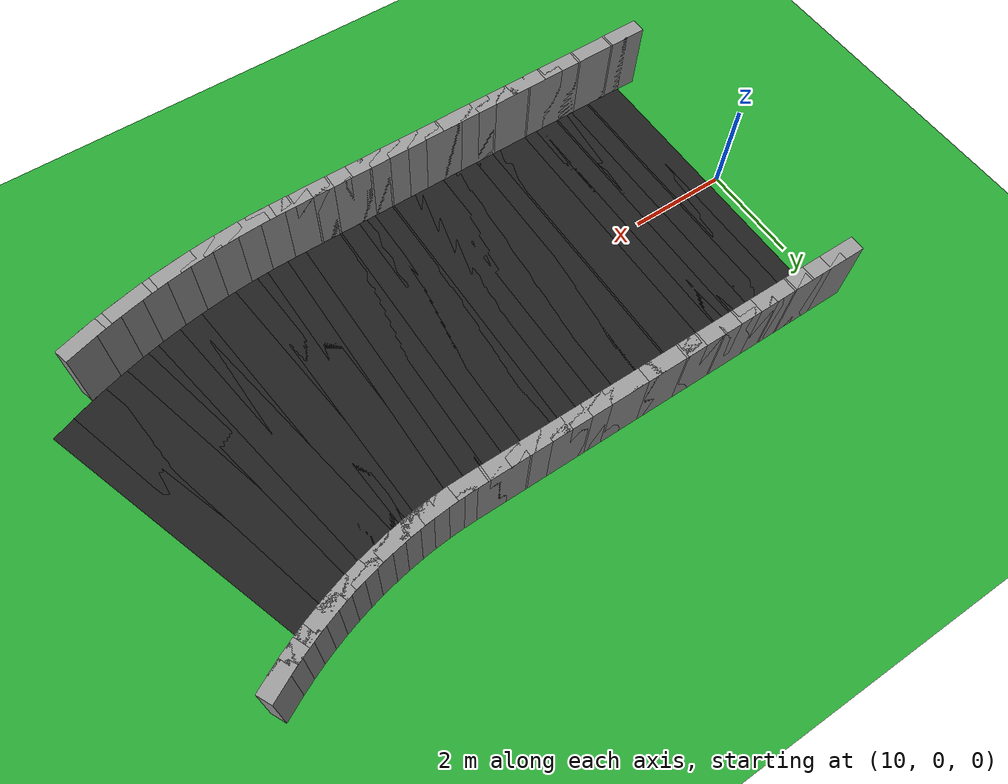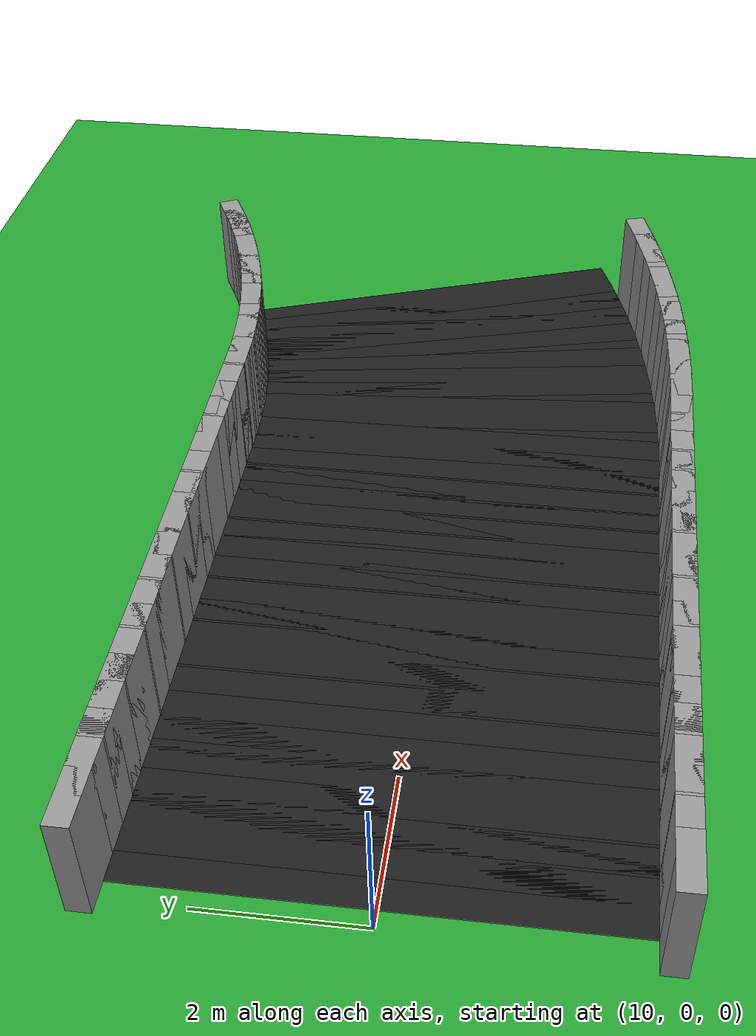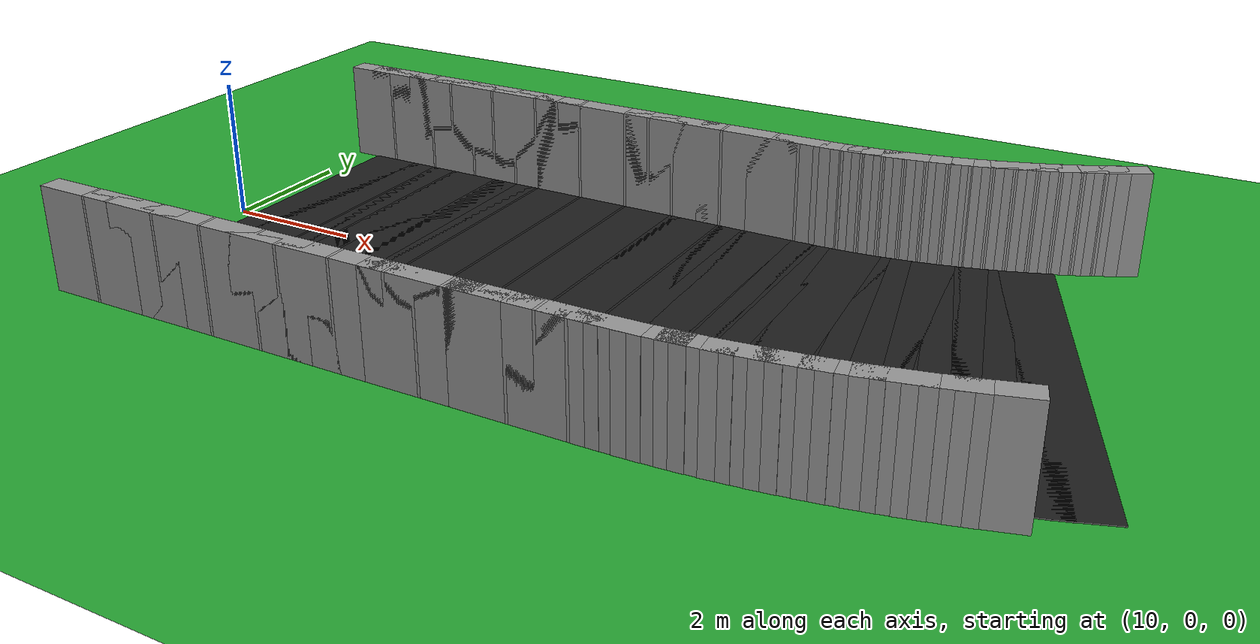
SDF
<sdf version="1.6">
 <world name="loop_road">
  <include><uri>model://sun</uri></include>
  <model name="ground_plane">
   <static>true</static>
   <link name="link">
    <collision name="collision">
     <surface><friction><ode><mu>100</mu><mu2>50</mu2></ode></friction></surface>
     <geometry><plane><normal>0 0 1</normal><size>120 120</size></plane></geometry>
    </collision>
    <visual name="visual">
     <geometry><plane><normal>0 0 1</normal><size>120 120</size></plane></geometry>
     <material>
      <script><uri>file://media/materials/scripts/gazebo.material</uri><name>Gazebo/Green</name></script>
     </material>
    </visual>
   </link>
  </model>
  <model name="curbL_25">
   <static>true</static>
   <pose>10.200 3.150 0.750 0 0 0.00000</pose>
   <link name="link">
    <collision name="collision"><geometry><box><size>0.760 0.300 1.500</size></box></geometry></collision>
    <visual name="visual">
     <geometry><box><size>0.760 0.300 1.500</size></box></geometry>
     <material>
      <script><uri>file://media/materials/scripts/gazebo.material</uri><name>Gazebo/Grey</name></script>
     </material>
    </visual>
   </link>
  </model>
  <model name="curbR_25">
   <static>true</static>
   <pose>10.200 -3.150 0.750 0 0 0.00000</pose>
   <link name="link">
    <collision name="collision"><geometry><box><size>0.760 0.300 1.500</size></box></geometry></collision>
    <visual name="visual">
     <geometry><box><size>0.760 0.300 1.500</size></box></geometry>
     <material>
      <script><uri>file://media/materials/scripts/gazebo.material</uri><name>Gazebo/Grey</name></script>
     </material>
    </visual>
   </link>
  </model>
  <model name="asphalt_26">
   <static>true</static>
   <pose>10.600 0.000 0.005 0 0 0.00000</pose>
   <link name="link">
    <visual name="visual">
     <geometry><box><size>0.760 6.000 0.010</size></box></geometry>
     <material>
      <script><uri>file://media/materials/scripts/gazebo.material</uri><name>Gazebo/Black</name></script>
     </material>
    </visual>
   </link>
  </model>
  <model name="curbL_26">
   <static>true</static>
   <pose>10.600 3.150 0.750 0 0 0.00000</pose>
   <link name="link">
    <collision name="collision"><geometry><box><size>0.760 0.300 1.500</size></box></geometry></collision>
    <visual name="visual">
     <geometry><box><size>0.760 0.300 1.500</size></box></geometry>
     <material>
      <script><uri>file://media/materials/scripts/gazebo.material</uri><name>Gazebo/Grey</name></script>
     </material>
    </visual>
   </link>
  </model>
  <model name="curbR_26">
   <static>true</static>
   <pose>10.600 -3.150 0.750 0 0 0.00000</pose>
   <link name="link">
    <collision name="collision"><geometry><box><size>0.760 0.300 1.500</size></box></geometry></collision>
    <visual name="visual">
     <geometry><box><size>0.760 0.300 1.500</size></box></geometry>
     <material>
      <script><uri>file://media/materials/scripts/gazebo.material</uri><name>Gazebo/Grey</name></script>
     </material>
    </visual>
   </link>
  </model>
  <model name="asphalt_27">
   <static>true</static>
   <pose>11.000 0.000 0.005 0 0 0.00000</pose>
   <link name="link">
    <visual name="visual">
     <geometry><box><size>0.760 6.000 0.010</size></box></geometry>
     <material>
      <script><uri>file://media/materials/scripts/gazebo.material</uri><name>Gazebo/Black</name></script>
     </material>
    </visual>
   </link>
  </model>
  <model name="curbL_27">
   <static>true</static>
   <pose>11.000 3.150 0.750 0 0 0.00000</pose>
   <link name="link">
    <collision name="collision"><geometry><box><size>0.760 0.300 1.500</size></box></geometry></collision>
    <visual name="visual">
     <geometry><box><size>0.760 0.300 1.500</size></box></geometry>
     <material>
      <script><uri>file://media/materials/scripts/gazebo.material</uri><name>Gazebo/Grey</name></script>
     </material>
    </visual>
   </link>
  </model>
  <model name="curbR_27">
   <static>true</static>
   <pose>11.000 -3.150 0.750 0 0 0.00000</pose>
   <link name="link">
    <collision name="collision"><geometry><box><size>0.760 0.300 1.500</size></box></geometry></collision>
    <visual name="visual">
     <geometry><box><size>0.760 0.300 1.500</size></box></geometry>
     <material>
      <script><uri>file://media/materials/scripts/gazebo.material</uri><name>Gazebo/Grey</name></script>
     </material>
    </visual>
   </link>
  </model>
  <model name="asphalt_28">
   <static>true</static>
   <pose>11.400 0.000 0.005 0 0 0.00000</pose>
   <link name="link">
    <visual name="visual">
     <geometry><box><size>0.760 6.000 0.010</size></box></geometry>
     <material>
      <script><uri>file://media/materials/scripts/gazebo.material</uri><name>Gazebo/Black</name></script>
     </material>
    </visual>
   </link>
  </model>
  <model name="curbL_28">
   <static>true</static>
   <pose>11.400 3.150 0.750 0 0 0.00000</pose>
   <link name="link">
    <collision name="collision"><geometry><box><size>0.760 0.300 1.500</size></box></geometry></collision>
    <visual name="visual">
     <geometry><box><size>0.760 0.300 1.500</size></box></geometry>
     <material>
      <script><uri>file://media/materials/scripts/gazebo.material</uri><name>Gazebo/Grey</name></script>
     </material>
    </visual>
   </link>
  </model>
  <model name="curbR_28">
   <static>true</static>
   <pose>11.400 -3.150 0.750 0 0 0.00000</pose>
   <link name="link">
    <collision name="collision"><geometry><box><size>0.760 0.300 1.500</size></box></geometry></collision>
    <visual name="visual">
     <geometry><box><size>0.760 0.300 1.500</size></box></geometry>
     <material>
      <script><uri>file://media/materials/scripts/gazebo.material</uri><name>Gazebo/Grey</name></script>
     </material>
    </visual>
   </link>
  </model>
  <model name="asphalt_29">
   <static>true</static>
   <pose>11.800 0.000 0.005 0 0 0.00000</pose>
   <link name="link">
    <visual name="visual">
     <geometry><box><size>0.760 6.000 0.010</size></box></geometry>
     <material>
      <script><uri>file://media/materials/scripts/gazebo.material</uri><name>Gazebo/Black</name></script>
     </material>
    </visual>
   </link>
  </model>
  <model name="curbL_29">
   <static>true</static>
   <pose>11.800 3.150 0.750 0 0 0.00000</pose>
   <link name="link">
    <collision name="collision"><geometry><box><size>0.760 0.300 1.500</size></box></geometry></collision>
    <visual name="visual">
     <geometry><box><size>0.760 0.300 1.500</size></box></geometry>
     <material>
      <script><uri>file://media/materials/scripts/gazebo.material</uri><name>Gazebo/Grey</name></script>
     </material>
    </visual>
   </link>
  </model>
  <model name="curbR_29">
   <static>true</static>
   <pose>11.800 -3.150 0.750 0 0 0.00000</pose>
   <link name="link">
    <collision name="collision"><geometry><box><size>0.760 0.300 1.500</size></box></geometry></collision>
    <visual name="visual">
     <geometry><box><size>0.760 0.300 1.500</size></box></geometry>
     <material>
      <script><uri>file://media/materials/scripts/gazebo.material</uri><name>Gazebo/Grey</name></script>
     </material>
    </visual>
   </link>
  </model>
  <model name="asphalt_30">
   <static>true</static>
   <pose>12.200 0.000 0.005 0 0 0.00000</pose>
   <link name="link">
    <visual name="visual">
     <geometry><box><size>0.760 6.000 0.010</size></box></geometry>
     <material>
      <script><uri>file://media/materials/scripts/gazebo.material</uri><name>Gazebo/Black</name></script>
     </material>
    </visual>
   </link>
  </model>
  <model name="curbL_30">
   <static>true</static>
   <pose>12.200 3.150 0.750 0 0 0.00000</pose>
   <link name="link">
    <collision name="collision"><geometry><box><size>0.760 0.300 1.500</size></box></geometry></collision>
    <visual name="visual">
     <geometry><box><size>0.760 0.300 1.500</size></box></geometry>
     <material>
      <script><uri>file://media/materials/scripts/gazebo.material</uri><name>Gazebo/Grey</name></script>
     </material>
    </visual>
   </link>
  </model>
  <model name="curbR_30">
   <static>true</static>
   <pose>12.200 -3.150 0.750 0 0 0.00000</pose>
   <link name="link">
    <collision name="collision"><geometry><box><size>0.760 0.300 1.500</size></box></geometry></collision>
    <visual name="visual">
     <geometry><box><size>0.760 0.300 1.500</size></box></geometry>
     <material>
      <script><uri>file://media/materials/scripts/gazebo.material</uri><name>Gazebo/Grey</name></script>
     </material>
    </visual>
   </link>
  </model>
  <model name="asphalt_31">
   <static>true</static>
   <pose>12.600 0.000 0.005 0 0 0.00000</pose>
   <link name="link">
    <visual name="visual">
     <geometry><box><size>0.760 6.000 0.010</size></box></geometry>
     <material>
      <script><uri>file://media/materials/scripts/gazebo.material</uri><name>Gazebo/Black</name></script>
     </material>
    </visual>
   </link>
  </model>
  <model name="curbL_31">
   <static>true</static>
   <pose>12.600 3.150 0.750 0 0 0.00000</pose>
   <link name="link">
    <collision name="collision"><geometry><box><size>0.760 0.300 1.500</size></box></geometry></collision>
    <visual name="visual">
     <geometry><box><size>0.760 0.300 1.500</size></box></geometry>
     <material>
      <script><uri>file://media/materials/scripts/gazebo.material</uri><name>Gazebo/Grey</name></script>
     </material>
    </visual>
   </link>
  </model>
  <model name="curbR_31">
   <static>true</static>
   <pose>12.600 -3.150 0.750 0 0 0.00000</pose>
   <link name="link">
    <collision name="collision"><geometry><box><size>0.760 0.300 1.500</size></box></geometry></collision>
    <visual name="visual">
     <geometry><box><size>0.760 0.300 1.500</size></box></geometry>
     <material>
      <script><uri>file://media/materials/scripts/gazebo.material</uri><name>Gazebo/Grey</name></script>
     </material>
    </visual>
   </link>
  </model>
  <model name="asphalt_32">
   <static>true</static>
   <pose>13.000 0.000 0.005 0 0 0.00000</pose>
   <link name="link">
    <visual name="visual">
     <geometry><box><size>0.760 6.000 0.010</size></box></geometry>
     <material>
      <script><uri>file://media/materials/scripts/gazebo.material</uri><name>Gazebo/Black</name></script>
     </material>
    </visual>
   </link>
  </model>
  <model name="curbL_32">
   <static>true</static>
   <pose>13.000 3.150 0.750 0 0 0.00000</pose>
   <link name="link">
    <collision name="collision"><geometry><box><size>0.760 0.300 1.500</size></box></geometry></collision>
    <visual name="visual">
     <geometry><box><size>0.760 0.300 1.500</size></box></geometry>
     <material>
      <script><uri>file://media/materials/scripts/gazebo.material</uri><name>Gazebo/Grey</name></script>
     </material>
    </visual>
   </link>
  </model>
  <model name="curbR_32">
   <static>true</static>
   <pose>13.000 -3.150 0.750 0 0 0.00000</pose>
   <link name="link">
    <collision name="collision"><geometry><box><size>0.760 0.300 1.500</size></box></geometry></collision>
    <visual name="visual">
     <geometry><box><size>0.760 0.300 1.500</size></box></geometry>
     <material>
      <script><uri>file://media/materials/scripts/gazebo.material</uri><name>Gazebo/Grey</name></script>
     </material>
    </visual>
   </link>
  </model>
  <model name="asphalt_33">
   <static>true</static>
   <pose>13.400 0.000 0.005 0 0 0.00000</pose>
   <link name="link">
    <visual name="visual">
     <geometry><box><size>0.760 6.000 0.010</size></box></geometry>
     <material>
      <script><uri>file://media/materials/scripts/gazebo.material</uri><name>Gazebo/Black</name></script>
     </material>
    </visual>
   </link>
  </model>
  <model name="curbL_33">
   <static>true</static>
   <pose>13.400 3.150 0.750 0 0 0.00000</pose>
   <link name="link">
    <collision name="collision"><geometry><box><size>0.760 0.300 1.500</size></box></geometry></collision>
    <visual name="visual">
     <geometry><box><size>0.760 0.300 1.500</size></box></geometry>
     <material>
      <script><uri>file://media/materials/scripts/gazebo.material</uri><name>Gazebo/Grey</name></script>
     </material>
    </visual>
   </link>
  </model>
  <model name="curbR_33">
   <static>true</static>
   <pose>13.400 -3.150 0.750 0 0 0.00000</pose>
   <link name="link">
    <collision name="collision"><geometry><box><size>0.760 0.300 1.500</size></box></geometry></collision>
    <visual name="visual">
     <geometry><box><size>0.760 0.300 1.500</size></box></geometry>
     <material>
      <script><uri>file://media/materials/scripts/gazebo.material</uri><name>Gazebo/Grey</name></script>
     </material>
    </visual>
   </link>
  </model>
  <model name="asphalt_34">
   <static>true</static>
   <pose>13.800 0.000 0.005 0 0 0.00000</pose>
   <link name="link">
    <visual name="visual">
     <geometry><box><size>0.760 6.000 0.010</size></box></geometry>
     <material>
      <script><uri>file://media/materials/scripts/gazebo.material</uri><name>Gazebo/Black</name></script>
     </material>
    </visual>
   </link>
  </model>
  <model name="curbL_34">
   <static>true</static>
   <pose>13.800 3.150 0.750 0 0 0.00000</pose>
   <link name="link">
    <collision name="collision"><geometry><box><size>0.760 0.300 1.500</size></box></geometry></collision>
    <visual name="visual">
     <geometry><box><size>0.760 0.300 1.500</size></box></geometry>
     <material>
      <script><uri>file://media/materials/scripts/gazebo.material</uri><name>Gazebo/Grey</name></script>
     </material>
    </visual>
   </link>
  </model>
  <model name="curbR_34">
   <static>true</static>
   <pose>13.800 -3.150 0.750 0 0 0.00000</pose>
   <link name="link">
    <collision name="collision"><geometry><box><size>0.760 0.300 1.500</size></box></geometry></collision>
    <visual name="visual">
     <geometry><box><size>0.760 0.300 1.500</size></box></geometry>
     <material>
      <script><uri>file://media/materials/scripts/gazebo.material</uri><name>Gazebo/Grey</name></script>
     </material>
    </visual>
   </link>
  </model>
  <model name="asphalt_35">
   <static>true</static>
   <pose>14.200 0.000 0.005 0 0 0.00000</pose>
   <link name="link">
    <visual name="visual">
     <geometry><box><size>0.760 6.000 0.010</size></box></geometry>
     <material>
      <script><uri>file://media/materials/scripts/gazebo.material</uri><name>Gazebo/Black</name></script>
     </material>
    </visual>
   </link>
  </model>
  <model name="curbL_35">
   <static>true</static>
   <pose>14.200 3.150 0.750 0 0 0.00000</pose>
   <link name="link">
    <collision name="collision"><geometry><box><size>0.760 0.300 1.500</size></box></geometry></collision>
    <visual name="visual">
     <geometry><box><size>0.760 0.300 1.500</size></box></geometry>
     <material>
      <script><uri>file://media/materials/scripts/gazebo.material</uri><name>Gazebo/Grey</name></script>
     </material>
    </visual>
   </link>
  </model>
  <model name="curbR_35">
   <static>true</static>
   <pose>14.200 -3.150 0.750 0 0 0.00000</pose>
   <link name="link">
    <collision name="collision"><geometry><box><size>0.760 0.300 1.500</size></box></geometry></collision>
    <visual name="visual">
     <geometry><box><size>0.760 0.300 1.500</size></box></geometry>
     <material>
      <script><uri>file://media/materials/scripts/gazebo.material</uri><name>Gazebo/Grey</name></script>
     </material>
    </visual>
   </link>
  </model>
  <model name="asphalt_36">
   <static>true</static>
   <pose>14.600 0.000 0.005 0 0 0.00000</pose>
   <link name="link">
    <visual name="visual">
     <geometry><box><size>0.760 6.000 0.010</size></box></geometry>
     <material>
      <script><uri>file://media/materials/scripts/gazebo.material</uri><name>Gazebo/Black</name></script>
     </material>
    </visual>
   </link>
  </model>
  <model name="curbL_36">
   <static>true</static>
   <pose>14.600 3.150 0.750 0 0 0.00000</pose>
   <link name="link">
    <collision name="collision"><geometry><box><size>0.760 0.300 1.500</size></box></geometry></collision>
    <visual name="visual">
     <geometry><box><size>0.760 0.300 1.500</size></box></geometry>
     <material>
      <script><uri>file://media/materials/scripts/gazebo.material</uri><name>Gazebo/Grey</name></script>
     </material>
    </visual>
   </link>
  </model>
  <model name="curbR_36">
   <static>true</static>
   <pose>14.600 -3.150 0.750 0 0 0.00000</pose>
   <link name="link">
    <collision name="collision"><geometry><box><size>0.760 0.300 1.500</size></box></geometry></collision>
    <visual name="visual">
     <geometry><box><size>0.760 0.300 1.500</size></box></geometry>
     <material>
      <script><uri>file://media/materials/scripts/gazebo.material</uri><name>Gazebo/Grey</name></script>
     </material>
    </visual>
   </link>
  </model>
  <model name="asphalt_37">
   <static>true</static>
   <pose>15.000 0.000 0.005 0 0 0.00000</pose>
   <link name="link">
    <visual name="visual">
     <geometry><box><size>0.760 6.000 0.010</size></box></geometry>
     <material>
      <script><uri>file://media/materials/scripts/gazebo.material</uri><name>Gazebo/Black</name></script>
     </material>
    </visual>
   </link>
  </model>
  <model name="curbL_37">
   <static>true</static>
   <pose>15.000 3.150 0.750 0 0 0.00000</pose>
   <link name="link">
    <collision name="collision"><geometry><box><size>0.760 0.300 1.500</size></box></geometry></collision>
    <visual name="visual">
     <geometry><box><size>0.760 0.300 1.500</size></box></geometry>
     <material>
      <script><uri>file://media/materials/scripts/gazebo.material</uri><name>Gazebo/Grey</name></script>
     </material>
    </visual>
   </link>
  </model>
  <model name="curbR_37">
   <static>true</static>
   <pose>15.000 -3.150 0.750 0 0 0.00000</pose>
   <link name="link">
    <collision name="collision"><geometry><box><size>0.760 0.300 1.500</size></box></geometry></collision>
    <visual name="visual">
     <geometry><box><size>0.760 0.300 1.500</size></box></geometry>
     <material>
      <script><uri>file://media/materials/scripts/gazebo.material</uri><name>Gazebo/Grey</name></script>
     </material>
    </visual>
   </link>
  </model>
  <model name="asphalt_38">
   <static>true</static>
   <pose>15.400 0.000 0.005 0 0 0.00000</pose>
   <link name="link">
    <visual name="visual">
     <geometry><box><size>0.760 6.000 0.010</size></box></geometry>
     <material>
      <script><uri>file://media/materials/scripts/gazebo.material</uri><name>Gazebo/Black</name></script>
     </material>
    </visual>
   </link>
  </model>
  <model name="curbL_38">
   <static>true</static>
   <pose>15.400 3.150 0.750 0 0 0.00000</pose>
   <link name="link">
    <collision name="collision"><geometry><box><size>0.760 0.300 1.500</size></box></geometry></collision>
    <visual name="visual">
     <geometry><box><size>0.760 0.300 1.500</size></box></geometry>
     <material>
      <script><uri>file://media/materials/scripts/gazebo.material</uri><name>Gazebo/Grey</name></script>
     </material>
    </visual>
   </link>
  </model>
  <model name="curbR_38">
   <static>true</static>
   <pose>15.400 -3.150 0.750 0 0 0.00000</pose>
   <link name="link">
    <collision name="collision"><geometry><box><size>0.760 0.300 1.500</size></box></geometry></collision>
    <visual name="visual">
     <geometry><box><size>0.760 0.300 1.500</size></box></geometry>
     <material>
      <script><uri>file://media/materials/scripts/gazebo.material</uri><name>Gazebo/Grey</name></script>
     </material>
    </visual>
   </link>
  </model>
  <model name="asphalt_39">
   <static>true</static>
   <pose>15.800 0.000 0.005 0 0 0.00000</pose>
   <link name="link">
    <visual name="visual">
     <geometry><box><size>0.760 6.000 0.010</size></box></geometry>
     <material>
      <script><uri>file://media/materials/scripts/gazebo.material</uri><name>Gazebo/Black</name></script>
     </material>
    </visual>
   </link>
  </model>
  <model name="curbL_39">
   <static>true</static>
   <pose>15.800 3.150 0.750 0 0 0.00000</pose>
   <link name="link">
    <collision name="collision"><geometry><box><size>0.760 0.300 1.500</size></box></geometry></collision>
    <visual name="visual">
     <geometry><box><size>0.760 0.300 1.500</size></box></geometry>
     <material>
      <script><uri>file://media/materials/scripts/gazebo.material</uri><name>Gazebo/Grey</name></script>
     </material>
    </visual>
   </link>
  </model>
  <model name="curbR_39">
   <static>true</static>
   <pose>15.800 -3.150 0.750 0 0 0.00000</pose>
   <link name="link">
    <collision name="collision"><geometry><box><size>0.760 0.300 1.500</size></box></geometry></collision>
    <visual name="visual">
     <geometry><box><size>0.760 0.300 1.500</size></box></geometry>
     <material>
      <script><uri>file://media/materials/scripts/gazebo.material</uri><name>Gazebo/Grey</name></script>
     </material>
    </visual>
   </link>
  </model>
  <model name="asphalt_40">
   <static>true</static>
   <pose>16.200 0.000 0.005 0 0 0.00000</pose>
   <link name="link">
    <visual name="visual">
     <geometry><box><size>0.760 6.000 0.010</size></box></geometry>
     <material>
      <script><uri>file://media/materials/scripts/gazebo.material</uri><name>Gazebo/Black</name></script>
     </material>
    </visual>
   </link>
  </model>
  <model name="curbL_40">
   <static>true</static>
   <pose>16.200 3.150 0.750 0 0 0.00000</pose>
   <link name="link">
    <collision name="collision"><geometry><box><size>0.760 0.300 1.500</size></box></geometry></collision>
    <visual name="visual">
     <geometry><box><size>0.760 0.300 1.500</size></box></geometry>
     <material>
      <script><uri>file://media/materials/scripts/gazebo.material</uri><name>Gazebo/Grey</name></script>
     </material>
    </visual>
   </link>
  </model>
  <model name="curbR_40">
   <static>true</static>
   <pose>16.200 -3.150 0.750 0 0 0.00000</pose>
   <link name="link">
    <collision name="collision"><geometry><box><size>0.760 0.300 1.500</size></box></geometry></collision>
    <visual name="visual">
     <geometry><box><size>0.760 0.300 1.500</size></box></geometry>
     <material>
      <script><uri>file://media/materials/scripts/gazebo.material</uri><name>Gazebo/Grey</name></script>
     </material>
    </visual>
   </link>
  </model>
  <model name="asphalt_41">
   <static>true</static>
   <pose>16.600 0.000 0.005 0 0 0.00000</pose>
   <link name="link">
    <visual name="visual">
     <geometry><box><size>0.760 6.000 0.010</size></box></geometry>
     <material>
      <script><uri>file://media/materials/scripts/gazebo.material</uri><name>Gazebo/Black</name></script>
     </material>
    </visual>
   </link>
  </model>
  <model name="curbL_41">
   <static>true</static>
   <pose>16.600 3.150 0.750 0 0 0.00000</pose>
   <link name="link">
    <collision name="collision"><geometry><box><size>0.760 0.300 1.500</size></box></geometry></collision>
    <visual name="visual">
     <geometry><box><size>0.760 0.300 1.500</size></box></geometry>
     <material>
      <script><uri>file://media/materials/scripts/gazebo.material</uri><name>Gazebo/Grey</name></script>
     </material>
    </visual>
   </link>
  </model>
  <model name="curbR_41">
   <static>true</static>
   <pose>16.600 -3.150 0.750 0 0 0.00000</pose>
   <link name="link">
    <collision name="collision"><geometry><box><size>0.760 0.300 1.500</size></box></geometry></collision>
    <visual name="visual">
     <geometry><box><size>0.760 0.300 1.500</size></box></geometry>
     <material>
      <script><uri>file://media/materials/scripts/gazebo.material</uri><name>Gazebo/Grey</name></script>
     </material>
    </visual>
   </link>
  </model>
  <model name="asphalt_42">
   <static>true</static>
   <pose>17.000 0.000 0.005 0 0 0.00000</pose>
   <link name="link">
    <visual name="visual">
     <geometry><box><size>0.760 6.000 0.010</size></box></geometry>
     <material>
      <script><uri>file://media/materials/scripts/gazebo.material</uri><name>Gazebo/Black</name></script>
     </material>
    </visual>
   </link>
  </model>
  <model name="curbL_42">
   <static>true</static>
   <pose>17.000 3.150 0.750 0 0 0.00000</pose>
   <link name="link">
    <collision name="collision"><geometry><box><size>0.760 0.300 1.500</size></box></geometry></collision>
    <visual name="visual">
     <geometry><box><size>0.760 0.300 1.500</size></box></geometry>
     <material>
      <script><uri>file://media/materials/scripts/gazebo.material</uri><name>Gazebo/Grey</name></script>
     </material>
    </visual>
   </link>
  </model>
  <model name="curbR_42">
   <static>true</static>
   <pose>17.000 -3.150 0.750 0 0 0.00000</pose>
   <link name="link">
    <collision name="collision"><geometry><box><size>0.760 0.300 1.500</size></box></geometry></collision>
    <visual name="visual">
     <geometry><box><size>0.760 0.300 1.500</size></box></geometry>
     <material>
      <script><uri>file://media/materials/scripts/gazebo.material</uri><name>Gazebo/Grey</name></script>
     </material>
    </visual>
   </link>
  </model>
  <model name="asphalt_43">
   <static>true</static>
   <pose>17.400 0.000 0.005 0 0 0.00000</pose>
   <link name="link">
    <visual name="visual">
     <geometry><box><size>0.760 6.000 0.010</size></box></geometry>
     <material>
      <script><uri>file://media/materials/scripts/gazebo.material</uri><name>Gazebo/Black</name></script>
     </material>
    </visual>
   </link>
  </model>
  <model name="curbL_43">
   <static>true</static>
   <pose>17.400 3.150 0.750 0 0 0.00000</pose>
   <link name="link">
    <collision name="collision"><geometry><box><size>0.760 0.300 1.500</size></box></geometry></collision>
    <visual name="visual">
     <geometry><box><size>0.760 0.300 1.500</size></box></geometry>
     <material>
      <script><uri>file://media/materials/scripts/gazebo.material</uri><name>Gazebo/Grey</name></script>
     </material>
    </visual>
   </link>
  </model>
  <model name="curbR_43">
   <static>true</static>
   <pose>17.400 -3.150 0.750 0 0 0.00000</pose>
   <link name="link">
    <collision name="collision"><geometry><box><size>0.760 0.300 1.500</size></box></geometry></collision>
    <visual name="visual">
     <geometry><box><size>0.760 0.300 1.500</size></box></geometry>
     <material>
      <script><uri>file://media/materials/scripts/gazebo.material</uri><name>Gazebo/Grey</name></script>
     </material>
    </visual>
   </link>
  </model>
  <model name="asphalt_44">
   <static>true</static>
   <pose>17.800 0.000 0.005 0 0 0.00000</pose>
   <link name="link">
    <visual name="visual">
     <geometry><box><size>0.760 6.000 0.010</size></box></geometry>
     <material>
      <script><uri>file://media/materials/scripts/gazebo.material</uri><name>Gazebo/Black</name></script>
     </material>
    </visual>
   </link>
  </model>
  <model name="curbL_44">
   <static>true</static>
   <pose>17.800 3.150 0.750 0 0 0.00000</pose>
   <link name="link">
    <collision name="collision"><geometry><box><size>0.760 0.300 1.500</size></box></geometry></collision>
    <visual name="visual">
     <geometry><box><size>0.760 0.300 1.500</size></box></geometry>
     <material>
      <script><uri>file://media/materials/scripts/gazebo.material</uri><name>Gazebo/Grey</name></script>
     </material>
    </visual>
   </link>
  </model>
  <model name="curbR_44">
   <static>true</static>
   <pose>17.800 -3.150 0.750 0 0 0.00000</pose>
   <link name="link">
    <collision name="collision"><geometry><box><size>0.760 0.300 1.500</size></box></geometry></collision>
    <visual name="visual">
     <geometry><box><size>0.760 0.300 1.500</size></box></geometry>
     <material>
      <script><uri>file://media/materials/scripts/gazebo.material</uri><name>Gazebo/Grey</name></script>
     </material>
    </visual>
   </link>
  </model>
  <model name="asphalt_45">
   <static>true</static>
   <pose>18.196 0.003 0.005 0 0 0.01636</pose>
   <link name="link">
    <visual name="visual">
     <geometry><box><size>0.753 6.000 0.010</size></box></geometry>
     <material>
      <script><uri>file://media/materials/scripts/gazebo.material</uri><name>Gazebo/Black</name></script>
     </material>
    </visual>
   </link>
  </model>
  <model name="curbL_45">
   <static>true</static>
   <pose>18.145 3.152 0.750 0 0 0.01636</pose>
   <link name="link">
    <collision name="collision"><geometry><box><size>0.650 0.300 1.500</size></box></geometry></collision>
    <visual name="visual">
     <geometry><box><size>0.650 0.300 1.500</size></box></geometry>
     <material>
      <script><uri>file://media/materials/scripts/gazebo.material</uri><name>Gazebo/Grey</name></script>
     </material>
    </visual>
   </link>
  </model>
  <model name="curbR_45">
   <static>true</static>
   <pose>18.248 -3.146 0.750 0 0 0.01636</pose>
   <link name="link">
    <collision name="collision"><geometry><box><size>0.856 0.300 1.500</size></box></geometry></collision>
    <visual name="visual">
     <geometry><box><size>0.856 0.300 1.500</size></box></geometry>
     <material>
      <script><uri>file://media/materials/scripts/gazebo.material</uri><name>Gazebo/Grey</name></script>
     </material>
    </visual>
   </link>
  </model>
  <model name="asphalt_46">
   <static>true</static>
   <pose>18.589 0.016 0.005 0 0 0.04909</pose>
   <link name="link">
    <visual name="visual">
     <geometry><box><size>0.753 6.000 0.010</size></box></geometry>
     <material>
      <script><uri>file://media/materials/scripts/gazebo.material</uri><name>Gazebo/Black</name></script>
     </material>
    </visual>
   </link>
  </model>
  <model name="curbL_46">
   <static>true</static>
   <pose>18.434 3.162 0.750 0 0 0.04909</pose>
   <link name="link">
    <collision name="collision"><geometry><box><size>0.650 0.300 1.500</size></box></geometry></collision>
    <visual name="visual">
     <geometry><box><size>0.650 0.300 1.500</size></box></geometry>
     <material>
      <script><uri>file://media/materials/scripts/gazebo.material</uri><name>Gazebo/Grey</name></script>
     </material>
    </visual>
   </link>
  </model>
  <model name="curbR_46">
   <static>true</static>
   <pose>18.743 -3.130 0.750 0 0 0.04909</pose>
   <link name="link">
    <collision name="collision"><geometry><box><size>0.856 0.300 1.500</size></box></geometry></collision>
    <visual name="visual">
     <geometry><box><size>0.856 0.300 1.500</size></box></geometry>
     <material>
      <script><uri>file://media/materials/scripts/gazebo.material</uri><name>Gazebo/Grey</name></script>
     </material>
    </visual>
   </link>
  </model>
  <model name="asphalt_47">
   <static>true</static>
   <pose>18.981 0.042 0.005 0 0 0.08181</pose>
   <link name="link">
    <visual name="visual">
     <geometry><box><size>0.753 6.000 0.010</size></box></geometry>
     <material>
      <script><uri>file://media/materials/scripts/gazebo.material</uri><name>Gazebo/Black</name></script>
     </material>
    </visual>
   </link>
  </model>
  <model name="curbL_47">
   <static>true</static>
   <pose>18.723 3.181 0.750 0 0 0.08181</pose>
   <link name="link">
    <collision name="collision"><geometry><box><size>0.650 0.300 1.500</size></box></geometry></collision>
    <visual name="visual">
     <geometry><box><size>0.650 0.300 1.500</size></box></geometry>
     <material>
      <script><uri>file://media/materials/scripts/gazebo.material</uri><name>Gazebo/Grey</name></script>
     </material>
    </visual>
   </link>
  </model>
  <model name="curbR_47">
   <static>true</static>
   <pose>19.238 -3.097 0.750 0 0 0.08181</pose>
   <link name="link">
    <collision name="collision"><geometry><box><size>0.856 0.300 1.500</size></box></geometry></collision>
    <visual name="visual">
     <geometry><box><size>0.856 0.300 1.500</size></box></geometry>
     <material>
      <script><uri>file://media/materials/scripts/gazebo.material</uri><name>Gazebo/Grey</name></script>
     </material>
    </visual>
   </link>
  </model>
  <model name="asphalt_48">
   <static>true</static>
   <pose>19.371 0.080 0.005 0 0 0.11454</pose>
   <link name="link">
    <visual name="visual">
     <geometry><box><size>0.753 6.000 0.010</size></box></geometry>
     <material>
      <script><uri>file://media/materials/scripts/gazebo.material</uri><name>Gazebo/Black</name></script>
     </material>
    </visual>
   </link>
  </model>
  <model name="curbL_48">
   <static>true</static>
   <pose>19.011 3.209 0.750 0 0 0.11454</pose>
   <link name="link">
    <collision name="collision"><geometry><box><size>0.650 0.300 1.500</size></box></geometry></collision>
    <visual name="visual">
     <geometry><box><size>0.650 0.300 1.500</size></box></geometry>
     <material>
      <script><uri>file://media/materials/scripts/gazebo.material</uri><name>Gazebo/Grey</name></script>
     </material>
    </visual>
   </link>
  </model>
  <model name="curbR_48">
   <static>true</static>
   <pose>19.731 -3.049 0.750 0 0 0.11454</pose>
   <link name="link">
    <collision name="collision"><geometry><box><size>0.856 0.300 1.500</size></box></geometry></collision>
    <visual name="visual">
     <geometry><box><size>0.856 0.300 1.500</size></box></geometry>
     <material>
      <script><uri>file://media/materials/scripts/gazebo.material</uri><name>Gazebo/Grey</name></script>
     </material>
    </visual>
   </link>
  </model>
  <model name="asphalt_49">
   <static>true</static>
   <pose>19.761 0.131 0.005 0 0 0.14726</pose>
   <link name="link">
    <visual name="visual">
     <geometry><box><size>0.753 6.000 0.010</size></box></geometry>
     <material>
      <script><uri>file://media/materials/scripts/gazebo.material</uri><name>Gazebo/Black</name></script>
     </material>
    </visual>
   </link>
  </model>
  <model name="curbL_49">
   <static>true</static>
   <pose>19.298 3.247 0.750 0 0 0.14726</pose>
   <link name="link">
    <collision name="collision"><geometry><box><size>0.650 0.300 1.500</size></box></geometry></collision>
    <visual name="visual">
     <geometry><box><size>0.650 0.300 1.500</size></box></geometry>
     <material>
      <script><uri>file://media/materials/scripts/gazebo.material</uri><name>Gazebo/Grey</name></script>
     </material>
    </visual>
   </link>
  </model>
  <model name="curbR_49">
   <static>true</static>
   <pose>20.223 -2.984 0.750 0 0 0.14726</pose>
   <link name="link">
    <collision name="collision"><geometry><box><size>0.856 0.300 1.500</size></box></geometry></collision>
    <visual name="visual">
     <geometry><box><size>0.856 0.300 1.500</size></box></geometry>
     <material>
      <script><uri>file://media/materials/scripts/gazebo.material</uri><name>Gazebo/Grey</name></script>
     </material>
    </visual>
   </link>
  </model>
  <model name="asphalt_50">
   <static>true</static>
   <pose>20.148 0.195 0.005 0 0 0.17999</pose>
   <link name="link">
    <visual name="visual">
     <geometry><box><size>0.753 6.000 0.010</size></box></geometry>
     <material>
      <script><uri>file://media/materials/scripts/gazebo.material</uri><name>Gazebo/Black</name></script>
     </material>
    </visual>
   </link>
  </model>
  <model name="curbL_50">
   <static>true</static>
   <pose>19.584 3.294 0.750 0 0 0.17999</pose>
   <link name="link">
    <collision name="collision"><geometry><box><size>0.650 0.300 1.500</size></box></geometry></collision>
    <visual name="visual">
     <geometry><box><size>0.650 0.300 1.500</size></box></geometry>
     <material>
      <script><uri>file://media/materials/scripts/gazebo.material</uri><name>Gazebo/Grey</name></script>
     </material>
    </visual>
   </link>
  </model>
  <model name="curbR_50">
   <static>true</static>
   <pose>20.712 -2.903 0.750 0 0 0.17999</pose>
   <link name="link">
    <collision name="collision"><geometry><box><size>0.856 0.300 1.500</size></box></geometry></collision>
    <visual name="visual">
     <geometry><box><size>0.856 0.300 1.500</size></box></geometry>
     <material>
      <script><uri>file://media/materials/scripts/gazebo.material</uri><name>Gazebo/Grey</name></script>
     </material>
    </visual>
   </link>
  </model>
  <model name="asphalt_51">
   <static>true</static>
   <pose>20.533 0.272 0.005 0 0 0.21271</pose>
   <link name="link">
    <visual name="visual">
     <geometry><box><size>0.753 6.000 0.010</size></box></geometry>
     <material>
      <script><uri>file://media/materials/scripts/gazebo.material</uri><name>Gazebo/Black</name></script>
     </material>
    </visual>
   </link>
  </model>
  <model name="curbL_51">
   <static>true</static>
   <pose>19.868 3.351 0.750 0 0 0.21271</pose>
   <link name="link">
    <collision name="collision"><geometry><box><size>0.650 0.300 1.500</size></box></geometry></collision>
    <visual name="visual">
     <geometry><box><size>0.650 0.300 1.500</size></box></geometry>
     <material>
      <script><uri>file://media/materials/scripts/gazebo.material</uri><name>Gazebo/Grey</name></script>
     </material>
    </visual>
   </link>
  </model>
  <model name="curbR_51">
   <static>true</static>
   <pose>21.198 -2.807 0.750 0 0 0.21271</pose>
   <link name="link">
    <collision name="collision"><geometry><box><size>0.856 0.300 1.500</size></box></geometry></collision>
    <visual name="visual">
     <geometry><box><size>0.856 0.300 1.500</size></box></geometry>
     <material>
      <script><uri>file://media/materials/scripts/gazebo.material</uri><name>Gazebo/Grey</name></script>
     </material>
    </visual>
   </link>
  </model>
  <model name="asphalt_52">
   <static>true</static>
   <pose>20.916 0.361 0.005 0 0 0.24544</pose>
   <link name="link">
    <visual name="visual">
     <geometry><box><size>0.753 6.000 0.010</size></box></geometry>
     <material>
      <script><uri>file://media/materials/scripts/gazebo.material</uri><name>Gazebo/Black</name></script>
     </material>
    </visual>
   </link>
  </model>
  <model name="curbL_52">
   <static>true</static>
   <pose>20.150 3.416 0.750 0 0 0.24544</pose>
   <link name="link">
    <collision name="collision"><geometry><box><size>0.650 0.300 1.500</size></box></geometry></collision>
    <visual name="visual">
     <geometry><box><size>0.650 0.300 1.500</size></box></geometry>
     <material>
      <script><uri>file://media/materials/scripts/gazebo.material</uri><name>Gazebo/Grey</name></script>
     </material>
    </visual>
   </link>
  </model>
  <model name="curbR_52">
   <static>true</static>
   <pose>21.681 -2.694 0.750 0 0 0.24544</pose>
   <link name="link">
    <collision name="collision"><geometry><box><size>0.856 0.300 1.500</size></box></geometry></collision>
    <visual name="visual">
     <geometry><box><size>0.856 0.300 1.500</size></box></geometry>
     <material>
      <script><uri>file://media/materials/scripts/gazebo.material</uri><name>Gazebo/Grey</name></script>
     </material>
    </visual>
   </link>
  </model>
  <model name="asphalt_53">
   <static>true</static>
   <pose>21.295 0.463 0.005 0 0 0.27816</pose>
   <link name="link">
    <visual name="visual">
     <geometry><box><size>0.753 6.000 0.010</size></box></geometry>
     <material>
      <script><uri>file://media/materials/scripts/gazebo.material</uri><name>Gazebo/Black</name></script>
     </material>
    </visual>
   </link>
  </model>
  <model name="curbL_53">
   <static>true</static>
   <pose>20.430 3.491 0.750 0 0 0.27816</pose>
   <link name="link">
    <collision name="collision"><geometry><box><size>0.650 0.300 1.500</size></box></geometry></collision>
    <visual name="visual">
     <geometry><box><size>0.650 0.300 1.500</size></box></geometry>
     <material>
      <script><uri>file://media/materials/scripts/gazebo.material</uri><name>Gazebo/Grey</name></script>
     </material>
    </visual>
   </link>
  </model>
  <model name="curbR_53">
   <static>true</static>
   <pose>22.160 -2.566 0.750 0 0 0.27816</pose>
   <link name="link">
    <collision name="collision"><geometry><box><size>0.856 0.300 1.500</size></box></geometry></collision>
    <visual name="visual">
     <geometry><box><size>0.856 0.300 1.500</size></box></geometry>
     <material>
      <script><uri>file://media/materials/scripts/gazebo.material</uri><name>Gazebo/Grey</name></script>
     </material>
    </visual>
   </link>
  </model>
  <model name="asphalt_54">
   <static>true</static>
   <pose>21.671 0.577 0.005 0 0 0.31089</pose>
   <link name="link">
    <visual name="visual">
     <geometry><box><size>0.753 6.000 0.010</size></box></geometry>
     <material>
      <script><uri>file://media/materials/scripts/gazebo.material</uri><name>Gazebo/Black</name></script>
     </material>
    </visual>
   </link>
  </model>
  <model name="curbL_54">
   <static>true</static>
   <pose>20.707 3.575 0.750 0 0 0.31089</pose>
   <link name="link">
    <collision name="collision"><geometry><box><size>0.650 0.300 1.500</size></box></geometry></collision>
    <visual name="visual">
     <geometry><box><size>0.650 0.300 1.500</size></box></geometry>
     <material>
      <script><uri>file://media/materials/scripts/gazebo.material</uri><name>Gazebo/Grey</name></script>
     </material>
    </visual>
   </link>
  </model>
  <model name="asphalt_55">
   <static>true</static>
   <pose>22.042 0.703 0.005 0 0 0.34361</pose>
   <link name="link">
    <visual name="visual">
     <geometry><box><size>0.753 6.000 0.010</size></box></geometry>
     <material>
      <script><uri>file://media/materials/scripts/gazebo.material</uri><name>Gazebo/Black</name></script>
     </material>
    </visual>
   </link>
  </model>
  <model name="curbL_55">
   <static>true</static>
   <pose>20.981 3.668 0.750 0 0 0.34361</pose>
   <link name="link">
    <collision name="collision"><geometry><box><size>0.650 0.300 1.500</size></box></geometry></collision>
    <visual name="visual">
     <geometry><box><size>0.650 0.300 1.500</size></box></geometry>
     <material>
      <script><uri>file://media/materials/scripts/gazebo.material</uri><name>Gazebo/Grey</name></script>
     </material>
    </visual>
   </link>
  </model>
  <model name="curbL_56">
   <static>true</static>
   <pose>21.252 3.770 0.750 0 0 0.37634</pose>
   <link name="link">
    <collision name="collision"><geometry><box><size>0.650 0.300 1.500</size></box></geometry></collision>
    <visual name="visual">
     <geometry><box><size>0.650 0.300 1.500</size></box></geometry>
     <material>
      <script><uri>file://media/materials/scripts/gazebo.material</uri><name>Gazebo/Grey</name></script>
     </material>
    </visual>
   </link>
  </model>
  <model name="curbL_57">
   <static>true</static>
   <pose>21.520 3.881 0.750 0 0 0.40906</pose>
   <link name="link">
    <collision name="collision"><geometry><box><size>0.650 0.300 1.500</size></box></geometry></collision>
    <visual name="visual">
     <geometry><box><size>0.650 0.300 1.500</size></box></geometry>
     <material>
      <script><uri>file://media/materials/scripts/gazebo.material</uri><name>Gazebo/Grey</name></script>
     </material>
    </visual>
   </link>
  </model>
  <model name="curbL_58">
   <static>true</static>
   <pose>21.784 4.001 0.750 0 0 0.44179</pose>
   <link name="link">
    <collision name="collision"><geometry><box><size>0.650 0.300 1.500</size></box></geometry></collision>
    <visual name="visual">
     <geometry><box><size>0.650 0.300 1.500</size></box></geometry>
     <material>
      <script><uri>file://media/materials/scripts/gazebo.material</uri><name>Gazebo/Grey</name></script>
     </material>
    </visual>
   </link>
  </model>
  <model name="curbL_59">
   <static>true</static>
   <pose>22.043 4.129 0.750 0 0 0.47451</pose>
   <link name="link">
    <collision name="collision"><geometry><box><size>0.650 0.300 1.500</size></box></geometry></collision>
    <visual name="visual">
     <geometry><box><size>0.650 0.300 1.500</size></box></geometry>
     <material>
      <script><uri>file://media/materials/scripts/gazebo.material</uri><name>Gazebo/Grey</name></script>
     </material>
    </visual>
   </link>
  </model>
 </world>
</sdf>
